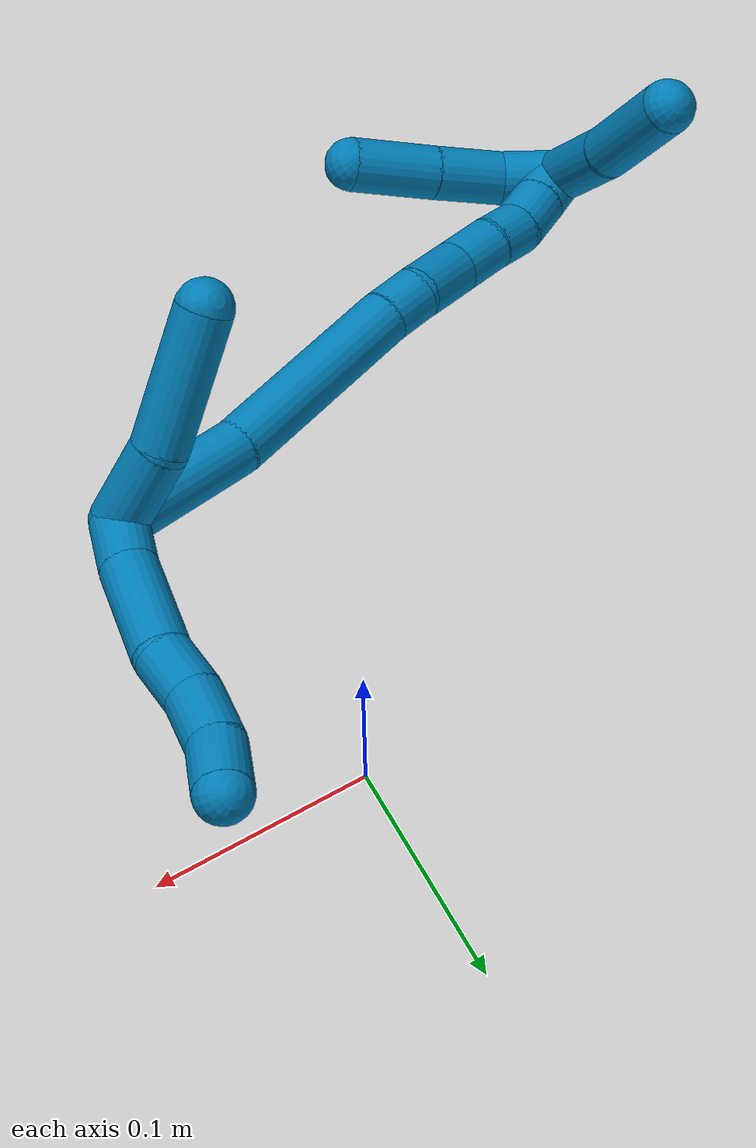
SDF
<sdf version="1.7">
 <world name="default">
  <model name="9">
   <static>0</static>
   <link name="9">
    <collision name="collision-cylinder-e_1_2_8">
     <pose>0.010353 -0.002466 -0.00426 2.61687 1.12699 2.33778</pose>
     <geometry><cylinder><radius>0.0125</radius><length>0.022927</length></cylinder></geometry>
     <surface>
      <friction><ode><mu>1.16</mu><mu2>1.16</mu2><slip1>0</slip1><slip2>0</slip2></ode></friction>
      <contact><ode><kp>1e+06</kp><kd>1</kd><max_vel>0</max_vel><min_depth>0.001</min_depth></ode></contact>
     </surface>
    </collision>
    <visual name="visual-cylinder-e_1_2_8">
     <pose>0.010353 -0.002466 -0.00426 2.61687 1.12699 2.33778</pose>
     <geometry><cylinder><radius>0.0125</radius><length>0.022927</length></cylinder></geometry>
     <material><ambient>0 0.490196 0.709804 1</ambient></material>
    </visual>
    <collision name="collision-cylinder-e_2_8_9">
     <pose>0.040021 -0.009905 -0.022417 2.7979 0.918308 2.46637</pose>
     <geometry><cylinder><radius>0.0125</radius><length>0.048618</length></cylinder></geometry>
     <surface>
      <friction><ode><mu>1.16</mu><mu2>1.16</mu2><slip1>0</slip1><slip2>0</slip2></ode></friction>
      <contact><ode><kp>1e+06</kp><kd>1</kd><max_vel>0</max_vel><min_depth>0.001</min_depth></ode></contact>
     </surface>
    </collision>
    <visual name="visual-cylinder-e_2_8_9">
     <pose>0.040021 -0.009905 -0.022417 2.7979 0.918308 2.46637</pose>
     <geometry><cylinder><radius>0.0125</radius><length>0.048618</length></cylinder></geometry>
     <material><ambient>0 0.490196 0.709804 1</ambient></material>
    </visual>
    <collision name="collision-cylinder-e_3_9_10">
     <pose>0.067512 -0.020232 -0.043096 2.4735 0.757689 1.70752</pose>
     <geometry><cylinder><radius>0.0125</radius><length>0.023791</length></cylinder></geometry>
     <surface>
      <friction><ode><mu>1.16</mu><mu2>1.16</mu2><slip1>0</slip1><slip2>0</slip2></ode></friction>
      <contact><ode><kp>1e+06</kp><kd>1</kd><max_vel>0</max_vel><min_depth>0.001</min_depth></ode></contact>
     </surface>
    </collision>
    <visual name="visual-cylinder-e_3_9_10">
     <pose>0.067512 -0.020232 -0.043096 2.4735 0.757689 1.70752</pose>
     <geometry><cylinder><radius>0.0125</radius><length>0.023791</length></cylinder></geometry>
     <material><ambient>0 0.490196 0.709804 1</ambient></material>
    </visual>
    <collision name="collision-cylinder-e_4_10_11">
     <pose>0.086157 -0.028176 -0.059218 2.87096 0.824004 2.53757</pose>
     <geometry><cylinder><radius>0.0125</radius><length>0.028534</length></cylinder></geometry>
     <surface>
      <friction><ode><mu>1.16</mu><mu2>1.16</mu2><slip1>0</slip1><slip2>0</slip2></ode></friction>
      <contact><ode><kp>1e+06</kp><kd>1</kd><max_vel>0</max_vel><min_depth>0.001</min_depth></ode></contact>
     </surface>
    </collision>
    <visual name="visual-cylinder-e_4_10_11">
     <pose>0.086157 -0.028176 -0.059218 2.87096 0.824004 2.53757</pose>
     <geometry><cylinder><radius>0.0125</radius><length>0.028534</length></cylinder></geometry>
     <material><ambient>0 0.490196 0.709804 1</ambient></material>
    </visual>
    <collision name="collision-cylinder-e_5_11_6">
     <pose>0.106905 -0.030291 -0.076608 -3.08255 0.905457 -3.02032</pose>
     <geometry><cylinder><radius>0.0125</radius><length>0.026131</length></cylinder></geometry>
     <surface>
      <friction><ode><mu>1.16</mu><mu2>1.16</mu2><slip1>0</slip1><slip2>0</slip2></ode></friction>
      <contact><ode><kp>1e+06</kp><kd>1</kd><max_vel>0</max_vel><min_depth>0.001</min_depth></ode></contact>
     </surface>
    </collision>
    <visual name="visual-cylinder-e_5_11_6">
     <pose>0.106905 -0.030291 -0.076608 -3.08255 0.905457 -3.02032</pose>
     <geometry><cylinder><radius>0.0125</radius><length>0.026131</length></cylinder></geometry>
     <material><ambient>0 0.490196 0.709804 1</ambient></material>
    </visual>
    <collision name="collision-cylinder-e_1_2_12">
     <pose>-0.012319 -0.000629 -0.014567 3.09841 -0.701495 -3.02368</pose>
     <geometry><cylinder><radius>0.0125</radius><length>0.038176</length></cylinder></geometry>
     <surface>
      <friction><ode><mu>1.16</mu><mu2>1.16</mu2><slip1>0</slip1><slip2>0</slip2></ode></friction>
      <contact><ode><kp>1e+06</kp><kd>1</kd><max_vel>0</max_vel><min_depth>0.001</min_depth></ode></contact>
     </surface>
    </collision>
    <visual name="visual-cylinder-e_1_2_12">
     <pose>-0.012319 -0.000629 -0.014567 3.09841 -0.701495 -3.02368</pose>
     <geometry><cylinder><radius>0.0125</radius><length>0.038176</length></cylinder></geometry>
     <material><ambient>0 0.490196 0.709804 1</ambient></material>
    </visual>
    <collision name="collision-cylinder-e_2_12_5">
     <pose>-0.049426 0.001418 -0.047407 -2.99611 -0.930516 2.85329</pose>
     <geometry><cylinder><radius>0.0125</radius><length>0.061824</length></cylinder></geometry>
     <surface>
      <friction><ode><mu>1.16</mu><mu2>1.16</mu2><slip1>0</slip1><slip2>0</slip2></ode></friction>
      <contact><ode><kp>1e+06</kp><kd>1</kd><max_vel>0</max_vel><min_depth>0.001</min_depth></ode></contact>
     </surface>
    </collision>
    <visual name="visual-cylinder-e_2_12_5">
     <pose>-0.049426 0.001418 -0.047407 -2.99611 -0.930516 2.85329</pose>
     <geometry><cylinder><radius>0.0125</radius><length>0.061824</length></cylinder></geometry>
     <material><ambient>0 0.490196 0.709804 1</ambient></material>
    </visual>
    <collision name="collision-cylinder-e_1_2_13">
     <pose>-0.022917 -0.02332 0.000805 1.5363 -0.77638 -0.752498</pose>
     <geometry><cylinder><radius>0.0125</radius><length>0.065411</length></cylinder></geometry>
     <surface>
      <friction><ode><mu>1.16</mu><mu2>1.16</mu2><slip1>0</slip1><slip2>0</slip2></ode></friction>
      <contact><ode><kp>1e+06</kp><kd>1</kd><max_vel>0</max_vel><min_depth>0.001</min_depth></ode></contact>
     </surface>
    </collision>
    <visual name="visual-cylinder-e_1_2_13">
     <pose>-0.022917 -0.02332 0.000805 1.5363 -0.77638 -0.752498</pose>
     <geometry><cylinder><radius>0.0125</radius><length>0.065411</length></cylinder></geometry>
     <material><ambient>0 0.490196 0.709804 1</ambient></material>
    </visual>
    <collision name="collision-cylinder-e_2_13_14">
     <pose>-0.084563 -0.075848 0.002163 1.55184 -0.924563 -0.909514</pose>
     <geometry><cylinder><radius>0.0125</radius><length>0.097024</length></cylinder></geometry>
     <surface>
      <friction><ode><mu>1.16</mu><mu2>1.16</mu2><slip1>0</slip1><slip2>0</slip2></ode></friction>
      <contact><ode><kp>1e+06</kp><kd>1</kd><max_vel>0</max_vel><min_depth>0.001</min_depth></ode></contact>
     </surface>
    </collision>
    <visual name="visual-cylinder-e_2_13_14">
     <pose>-0.084563 -0.075848 0.002163 1.55184 -0.924563 -0.909514</pose>
     <geometry><cylinder><radius>0.0125</radius><length>0.097024</length></cylinder></geometry>
     <material><ambient>0 0.490196 0.709804 1</ambient></material>
    </visual>
    <collision name="collision-cylinder-e_3_14_15">
     <pose>-0.131111 -0.111937 0.002898 1.54449 -0.848834 -0.82926</pose>
     <geometry><cylinder><radius>0.0125</radius><length>0.020834</length></cylinder></geometry>
     <surface>
      <friction><ode><mu>1.16</mu><mu2>1.16</mu2><slip1>0</slip1><slip2>0</slip2></ode></friction>
      <contact><ode><kp>1e+06</kp><kd>1</kd><max_vel>0</max_vel><min_depth>0.001</min_depth></ode></contact>
     </surface>
    </collision>
    <visual name="visual-cylinder-e_3_14_15">
     <pose>-0.131111 -0.111937 0.002898 1.54449 -0.848834 -0.82926</pose>
     <geometry><cylinder><radius>0.0125</radius><length>0.020834</length></cylinder></geometry>
     <material><ambient>0 0.490196 0.709804 1</ambient></material>
    </visual>
    <collision name="collision-cylinder-e_4_15_16">
     <pose>-0.149697 -0.129195 0.007193 1.19338 -0.767452 -0.535347</pose>
     <geometry><cylinder><radius>0.0125</radius><length>0.031018</length></cylinder></geometry>
     <surface>
      <friction><ode><mu>1.16</mu><mu2>1.16</mu2><slip1>0</slip1><slip2>0</slip2></ode></friction>
      <contact><ode><kp>1e+06</kp><kd>1</kd><max_vel>0</max_vel><min_depth>0.001</min_depth></ode></contact>
     </surface>
    </collision>
    <visual name="visual-cylinder-e_4_15_16">
     <pose>-0.149697 -0.129195 0.007193 1.19338 -0.767452 -0.535347</pose>
     <geometry><cylinder><radius>0.0125</radius><length>0.031018</length></cylinder></geometry>
     <material><ambient>0 0.490196 0.709804 1</ambient></material>
    </visual>
    <collision name="collision-cylinder-e_5_16_17">
     <pose>-0.169338 -0.147912 0.012081 1.47812 -0.814155 -0.748823</pose>
     <geometry><cylinder><radius>0.0125</radius><length>0.024404</length></cylinder></geometry>
     <surface>
      <friction><ode><mu>1.16</mu><mu2>1.16</mu2><slip1>0</slip1><slip2>0</slip2></ode></friction>
      <contact><ode><kp>1e+06</kp><kd>1</kd><max_vel>0</max_vel><min_depth>0.001</min_depth></ode></contact>
     </surface>
    </collision>
    <visual name="visual-cylinder-e_5_16_17">
     <pose>-0.169338 -0.147912 0.012081 1.47812 -0.814155 -0.748823</pose>
     <geometry><cylinder><radius>0.0125</radius><length>0.024404</length></cylinder></geometry>
     <material><ambient>0 0.490196 0.709804 1</ambient></material>
    </visual>
    <collision name="collision-cylinder-e_6_17_18">
     <pose>-0.185056 -0.16348 0.014488 1.34881 -0.745857 -0.606267</pose>
     <geometry><cylinder><radius>0.0125</radius><length>0.020175</length></cylinder></geometry>
     <surface>
      <friction><ode><mu>1.16</mu><mu2>1.16</mu2><slip1>0</slip1><slip2>0</slip2></ode></friction>
      <contact><ode><kp>1e+06</kp><kd>1</kd><max_vel>0</max_vel><min_depth>0.001</min_depth></ode></contact>
     </surface>
    </collision>
    <visual name="visual-cylinder-e_6_17_18">
     <pose>-0.185056 -0.16348 0.014488 1.34881 -0.745857 -0.606267</pose>
     <geometry><cylinder><radius>0.0125</radius><length>0.020175</length></cylinder></geometry>
     <material><ambient>0 0.490196 0.709804 1</ambient></material>
    </visual>
    <collision name="collision-cylinder-e_7_18_19">
     <pose>-0.200864 -0.176017 0.017685 1.28392 -1.01753 -0.790087</pose>
     <geometry><cylinder><radius>0.0125</radius><length>0.021067</length></cylinder></geometry>
     <surface>
      <friction><ode><mu>1.16</mu><mu2>1.16</mu2><slip1>0</slip1><slip2>0</slip2></ode></friction>
      <contact><ode><kp>1e+06</kp><kd>1</kd><max_vel>0</max_vel><min_depth>0.001</min_depth></ode></contact>
     </surface>
    </collision>
    <visual name="visual-cylinder-e_7_18_19">
     <pose>-0.200864 -0.176017 0.017685 1.28392 -1.01753 -0.790087</pose>
     <geometry><cylinder><radius>0.0125</radius><length>0.021067</length></cylinder></geometry>
     <material><ambient>0 0.490196 0.709804 1</ambient></material>
    </visual>
    <collision name="collision-cylinder-e_8_19_1">
     <pose>-0.218418 -0.186235 0.020906 1.24578 -1.02818 -0.770724</pose>
     <geometry><cylinder><radius>0.0125</radius><length>0.020066</length></cylinder></geometry>
     <surface>
      <friction><ode><mu>1.16</mu><mu2>1.16</mu2><slip1>0</slip1><slip2>0</slip2></ode></friction>
      <contact><ode><kp>1e+06</kp><kd>1</kd><max_vel>0</max_vel><min_depth>0.001</min_depth></ode></contact>
     </surface>
    </collision>
    <visual name="visual-cylinder-e_8_19_1">
     <pose>-0.218418 -0.186235 0.020906 1.24578 -1.02818 -0.770724</pose>
     <geometry><cylinder><radius>0.0125</radius><length>0.020066</length></cylinder></geometry>
     <material><ambient>0 0.490196 0.709804 1</ambient></material>
    </visual>
    <collision name="collision-cylinder-e_1_1_20">
     <pose>-0.225073 -0.190409 -0.001445 -3.11097 0.080466 -2.41453</pose>
     <geometry><cylinder><radius>0.0125</radius><length>0.048189</length></cylinder></geometry>
     <surface>
      <friction><ode><mu>1.16</mu><mu2>1.16</mu2><slip1>0</slip1><slip2>0</slip2></ode></friction>
      <contact><ode><kp>1e+06</kp><kd>1</kd><max_vel>0</max_vel><min_depth>0.001</min_depth></ode></contact>
     </surface>
    </collision>
    <visual name="visual-cylinder-e_1_1_20">
     <pose>-0.225073 -0.190409 -0.001445 -3.11097 0.080466 -2.41453</pose>
     <geometry><cylinder><radius>0.0125</radius><length>0.048189</length></cylinder></geometry>
     <material><ambient>0 0.490196 0.709804 1</ambient></material>
    </visual>
    <collision name="collision-cylinder-e_2_20_4">
     <pose>-0.224652 -0.188645 -0.051291 -3.1018 -0.058531 1.94748</pose>
     <geometry><cylinder><radius>0.0125</radius><length>0.051811</length></cylinder></geometry>
     <surface>
      <friction><ode><mu>1.16</mu><mu2>1.16</mu2><slip1>0</slip1><slip2>0</slip2></ode></friction>
      <contact><ode><kp>1e+06</kp><kd>1</kd><max_vel>0</max_vel><min_depth>0.001</min_depth></ode></contact>
     </surface>
    </collision>
    <visual name="visual-cylinder-e_2_20_4">
     <pose>-0.224652 -0.188645 -0.051291 -3.1018 -0.058531 1.94748</pose>
     <geometry><cylinder><radius>0.0125</radius><length>0.051811</length></cylinder></geometry>
     <material><ambient>0 0.490196 0.709804 1</ambient></material>
    </visual>
    <collision name="collision-cylinder-e_1_1_21">
     <pose>-0.22481 -0.179611 0.028863 -1.07068 0.165881 -0.098533</pose>
     <geometry><cylinder><radius>0.0125</radius><length>0.026653</length></cylinder></geometry>
     <surface>
      <friction><ode><mu>1.16</mu><mu2>1.16</mu2><slip1>0</slip1><slip2>0</slip2></ode></friction>
      <contact><ode><kp>1e+06</kp><kd>1</kd><max_vel>0</max_vel><min_depth>0.001</min_depth></ode></contact>
     </surface>
    </collision>
    <visual name="visual-cylinder-e_1_1_21">
     <pose>-0.22481 -0.179611 0.028863 -1.07068 0.165881 -0.098533</pose>
     <geometry><cylinder><radius>0.0125</radius><length>0.026653</length></cylinder></geometry>
     <material><ambient>0 0.490196 0.709804 1</ambient></material>
    </visual>
    <collision name="collision-cylinder-e_2_21_22">
     <pose>-0.219328 -0.151952 0.037583 -1.42196 0.198597 -0.171183</pose>
     <geometry><cylinder><radius>0.0125</radius><length>0.033264</length></cylinder></geometry>
     <surface>
      <friction><ode><mu>1.16</mu><mu2>1.16</mu2><slip1>0</slip1><slip2>0</slip2></ode></friction>
      <contact><ode><kp>1e+06</kp><kd>1</kd><max_vel>0</max_vel><min_depth>0.001</min_depth></ode></contact>
     </surface>
    </collision>
    <visual name="visual-cylinder-e_2_21_22">
     <pose>-0.219328 -0.151952 0.037583 -1.42196 0.198597 -0.171183</pose>
     <geometry><cylinder><radius>0.0125</radius><length>0.033264</length></cylinder></geometry>
     <material><ambient>0 0.490196 0.709804 1</ambient></material>
    </visual>
    <collision name="collision-cylinder-e_3_22_3">
     <pose>-0.21257 -0.116354 0.04322 -1.407 0.174332 -0.14799</pose>
     <geometry><cylinder><radius>0.0125</radius><length>0.040083</length></cylinder></geometry>
     <surface>
      <friction><ode><mu>1.16</mu><mu2>1.16</mu2><slip1>0</slip1><slip2>0</slip2></ode></friction>
      <contact><ode><kp>1e+06</kp><kd>1</kd><max_vel>0</max_vel><min_depth>0.001</min_depth></ode></contact>
     </surface>
    </collision>
    <visual name="visual-cylinder-e_3_22_3">
     <pose>-0.21257 -0.116354 0.04322 -1.407 0.174332 -0.14799</pose>
     <geometry><cylinder><radius>0.0125</radius><length>0.040083</length></cylinder></geometry>
     <material><ambient>0 0.490196 0.709804 1</ambient></material>
    </visual>
    <collision name="collision-sphere-3">
     <pose>-0.209094 -0.09688 0.046438 0 -0 0</pose>
     <geometry><sphere><radius>0.0125</radius></sphere></geometry>
     <surface>
      <friction><ode><mu>1.16</mu><mu2>1.16</mu2><slip1>0</slip1><slip2>0</slip2></ode></friction>
      <contact><ode><kp>1e+06</kp><kd>1</kd><max_vel>0</max_vel><min_depth>0.001</min_depth></ode></contact>
     </surface>
    </collision>
    <visual name="visual-sphere-3">
     <pose>-0.209094 -0.09688 0.046438 0 -0 0</pose>
     <geometry><sphere><radius>0.0125</radius></sphere></geometry>
     <material><ambient>0 0.490196 0.709804 1</ambient></material>
    </visual>
    <collision name="collision-sphere-22">
     <pose>-0.216046 -0.135827 0.040001 0 -0 0</pose>
     <geometry><sphere><radius>0.0125</radius></sphere></geometry>
     <surface>
      <friction><ode><mu>1.16</mu><mu2>1.16</mu2><slip1>0</slip1><slip2>0</slip2></ode></friction>
      <contact><ode><kp>1e+06</kp><kd>1</kd><max_vel>0</max_vel><min_depth>0.001</min_depth></ode></contact>
     </surface>
    </collision>
    <visual name="visual-sphere-22">
     <pose>-0.216046 -0.135827 0.040001 0 -0 0</pose>
     <geometry><sphere><radius>0.0125</radius></sphere></geometry>
     <material><ambient>0 0.490196 0.709804 1</ambient></material>
    </visual>
    <collision name="collision-sphere-21">
     <pose>-0.222609 -0.168077 0.035165 0 -0 0</pose>
     <geometry><sphere><radius>0.0125</radius></sphere></geometry>
     <surface>
      <friction><ode><mu>1.16</mu><mu2>1.16</mu2><slip1>0</slip1><slip2>0</slip2></ode></friction>
      <contact><ode><kp>1e+06</kp><kd>1</kd><max_vel>0</max_vel><min_depth>0.001</min_depth></ode></contact>
     </surface>
    </collision>
    <visual name="visual-sphere-21">
     <pose>-0.222609 -0.168077 0.035165 0 -0 0</pose>
     <geometry><sphere><radius>0.0125</radius></sphere></geometry>
     <material><ambient>0 0.490196 0.709804 1</ambient></material>
    </visual>
    <collision name="collision-sphere-4">
     <pose>-0.226168 -0.187616 -0.077132 0 -0 0</pose>
     <geometry><sphere><radius>0.0125</radius></sphere></geometry>
     <surface>
      <friction><ode><mu>1.16</mu><mu2>1.16</mu2><slip1>0</slip1><slip2>0</slip2></ode></friction>
      <contact><ode><kp>1e+06</kp><kd>1</kd><max_vel>0</max_vel><min_depth>0.001</min_depth></ode></contact>
     </surface>
    </collision>
    <visual name="visual-sphere-4">
     <pose>-0.226168 -0.187616 -0.077132 0 -0 0</pose>
     <geometry><sphere><radius>0.0125</radius></sphere></geometry>
     <material><ambient>0 0.490196 0.709804 1</ambient></material>
    </visual>
    <collision name="collision-sphere-20">
     <pose>-0.223137 -0.189674 -0.02545 0 -0 0</pose>
     <geometry><sphere><radius>0.0125</radius></sphere></geometry>
     <surface>
      <friction><ode><mu>1.16</mu><mu2>1.16</mu2><slip1>0</slip1><slip2>0</slip2></ode></friction>
      <contact><ode><kp>1e+06</kp><kd>1</kd><max_vel>0</max_vel><min_depth>0.001</min_depth></ode></contact>
     </surface>
    </collision>
    <visual name="visual-sphere-20">
     <pose>-0.223137 -0.189674 -0.02545 0 -0 0</pose>
     <geometry><sphere><radius>0.0125</radius></sphere></geometry>
     <material><ambient>0 0.490196 0.709804 1</ambient></material>
    </visual>
    <collision name="collision-sphere-6">
     <pose>0.117184 -0.029815 -0.08466 0 -0 0</pose>
     <geometry><sphere><radius>0.0125</radius></sphere></geometry>
     <surface>
      <friction><ode><mu>1.16</mu><mu2>1.16</mu2><slip1>0</slip1><slip2>0</slip2></ode></friction>
      <contact><ode><kp>1e+06</kp><kd>1</kd><max_vel>0</max_vel><min_depth>0.001</min_depth></ode></contact>
     </surface>
    </collision>
    <visual name="visual-sphere-6">
     <pose>0.117184 -0.029815 -0.08466 0 -0 0</pose>
     <geometry><sphere><radius>0.0125</radius></sphere></geometry>
     <material><ambient>0 0.490196 0.709804 1</ambient></material>
    </visual>
    <collision name="collision-sphere-11">
     <pose>0.096627 -0.030767 -0.068557 0 -0 0</pose>
     <geometry><sphere><radius>0.0125</radius></sphere></geometry>
     <surface>
      <friction><ode><mu>1.16</mu><mu2>1.16</mu2><slip1>0</slip1><slip2>0</slip2></ode></friction>
      <contact><ode><kp>1e+06</kp><kd>1</kd><max_vel>0</max_vel><min_depth>0.001</min_depth></ode></contact>
     </surface>
    </collision>
    <visual name="visual-sphere-11">
     <pose>0.096627 -0.030767 -0.068557 0 -0 0</pose>
     <geometry><sphere><radius>0.0125</radius></sphere></geometry>
     <material><ambient>0 0.490196 0.709804 1</ambient></material>
    </visual>
    <collision name="collision-sphere-10">
     <pose>0.075687 -0.025585 -0.04988 0 -0 0</pose>
     <geometry><sphere><radius>0.0125</radius></sphere></geometry>
     <surface>
      <friction><ode><mu>1.16</mu><mu2>1.16</mu2><slip1>0</slip1><slip2>0</slip2></ode></friction>
      <contact><ode><kp>1e+06</kp><kd>1</kd><max_vel>0</max_vel><min_depth>0.001</min_depth></ode></contact>
     </surface>
    </collision>
    <visual name="visual-sphere-10">
     <pose>0.075687 -0.025585 -0.04988 0 -0 0</pose>
     <geometry><sphere><radius>0.0125</radius></sphere></geometry>
     <material><ambient>0 0.490196 0.709804 1</ambient></material>
    </visual>
    <collision name="collision-sphere-9">
     <pose>0.059337 -0.014879 -0.036313 0 -0 0</pose>
     <geometry><sphere><radius>0.0125</radius></sphere></geometry>
     <surface>
      <friction><ode><mu>1.16</mu><mu2>1.16</mu2><slip1>0</slip1><slip2>0</slip2></ode></friction>
      <contact><ode><kp>1e+06</kp><kd>1</kd><max_vel>0</max_vel><min_depth>0.001</min_depth></ode></contact>
     </surface>
    </collision>
    <visual name="visual-sphere-9">
     <pose>0.059337 -0.014879 -0.036313 0 -0 0</pose>
     <geometry><sphere><radius>0.0125</radius></sphere></geometry>
     <material><ambient>0 0.490196 0.709804 1</ambient></material>
    </visual>
    <collision name="collision-sphere-2">
     <geometry><sphere><radius>0.0125</radius></sphere></geometry>
     <surface>
      <friction><ode><mu>1.16</mu><mu2>1.16</mu2><slip1>0</slip1><slip2>0</slip2></ode></friction>
      <contact><ode><kp>1e+06</kp><kd>1</kd><max_vel>0</max_vel><min_depth>0.001</min_depth></ode></contact>
     </surface>
    </collision>
    <visual name="visual-sphere-2">
     <geometry><sphere><radius>0.0125</radius></sphere></geometry>
     <material><ambient>0 0.490196 0.709804 1</ambient></material>
    </visual>
    <collision name="collision-sphere-19">
     <pose>-0.209826 -0.181326 0.019252 0 -0 0</pose>
     <geometry><sphere><radius>0.0125</radius></sphere></geometry>
     <surface>
      <friction><ode><mu>1.16</mu><mu2>1.16</mu2><slip1>0</slip1><slip2>0</slip2></ode></friction>
      <contact><ode><kp>1e+06</kp><kd>1</kd><max_vel>0</max_vel><min_depth>0.001</min_depth></ode></contact>
     </surface>
    </collision>
    <visual name="visual-sphere-19">
     <pose>-0.209826 -0.181326 0.019252 0 -0 0</pose>
     <geometry><sphere><radius>0.0125</radius></sphere></geometry>
     <material><ambient>0 0.490196 0.709804 1</ambient></material>
    </visual>
    <collision name="collision-sphere-8">
     <pose>0.020706 -0.004932 -0.00852 0 -0 0</pose>
     <geometry><sphere><radius>0.0125</radius></sphere></geometry>
     <surface>
      <friction><ode><mu>1.16</mu><mu2>1.16</mu2><slip1>0</slip1><slip2>0</slip2></ode></friction>
      <contact><ode><kp>1e+06</kp><kd>1</kd><max_vel>0</max_vel><min_depth>0.001</min_depth></ode></contact>
     </surface>
    </collision>
    <visual name="visual-sphere-8">
     <pose>0.020706 -0.004932 -0.00852 0 -0 0</pose>
     <geometry><sphere><radius>0.0125</radius></sphere></geometry>
     <material><ambient>0 0.490196 0.709804 1</ambient></material>
    </visual>
    <collision name="collision-sphere-12">
     <pose>-0.024637 -0.001259 -0.029134 0 -0 0</pose>
     <geometry><sphere><radius>0.0125</radius></sphere></geometry>
     <surface>
      <friction><ode><mu>1.16</mu><mu2>1.16</mu2><slip1>0</slip1><slip2>0</slip2></ode></friction>
      <contact><ode><kp>1e+06</kp><kd>1</kd><max_vel>0</max_vel><min_depth>0.001</min_depth></ode></contact>
     </surface>
    </collision>
    <visual name="visual-sphere-12">
     <pose>-0.024637 -0.001259 -0.029134 0 -0 0</pose>
     <geometry><sphere><radius>0.0125</radius></sphere></geometry>
     <material><ambient>0 0.490196 0.709804 1</ambient></material>
    </visual>
    <collision name="collision-sphere-5">
     <pose>-0.074216 0.004096 -0.065679 0 -0 0</pose>
     <geometry><sphere><radius>0.0125</radius></sphere></geometry>
     <surface>
      <friction><ode><mu>1.16</mu><mu2>1.16</mu2><slip1>0</slip1><slip2>0</slip2></ode></friction>
      <contact><ode><kp>1e+06</kp><kd>1</kd><max_vel>0</max_vel><min_depth>0.001</min_depth></ode></contact>
     </surface>
    </collision>
    <visual name="visual-sphere-5">
     <pose>-0.074216 0.004096 -0.065679 0 -0 0</pose>
     <geometry><sphere><radius>0.0125</radius></sphere></geometry>
     <material><ambient>0 0.490196 0.709804 1</ambient></material>
    </visual>
    <collision name="collision-sphere-13">
     <pose>-0.045833 -0.04664 0.00161 0 -0 0</pose>
     <geometry><sphere><radius>0.0125</radius></sphere></geometry>
     <surface>
      <friction><ode><mu>1.16</mu><mu2>1.16</mu2><slip1>0</slip1><slip2>0</slip2></ode></friction>
      <contact><ode><kp>1e+06</kp><kd>1</kd><max_vel>0</max_vel><min_depth>0.001</min_depth></ode></contact>
     </surface>
    </collision>
    <visual name="visual-sphere-13">
     <pose>-0.045833 -0.04664 0.00161 0 -0 0</pose>
     <geometry><sphere><radius>0.0125</radius></sphere></geometry>
     <material><ambient>0 0.490196 0.709804 1</ambient></material>
    </visual>
    <collision name="collision-sphere-14">
     <pose>-0.123293 -0.105055 0.002717 0 -0 0</pose>
     <geometry><sphere><radius>0.0125</radius></sphere></geometry>
     <surface>
      <friction><ode><mu>1.16</mu><mu2>1.16</mu2><slip1>0</slip1><slip2>0</slip2></ode></friction>
      <contact><ode><kp>1e+06</kp><kd>1</kd><max_vel>0</max_vel><min_depth>0.001</min_depth></ode></contact>
     </surface>
    </collision>
    <visual name="visual-sphere-14">
     <pose>-0.123293 -0.105055 0.002717 0 -0 0</pose>
     <geometry><sphere><radius>0.0125</radius></sphere></geometry>
     <material><ambient>0 0.490196 0.709804 1</ambient></material>
    </visual>
    <collision name="collision-sphere-15">
     <pose>-0.138929 -0.118819 0.003079 0 -0 0</pose>
     <geometry><sphere><radius>0.0125</radius></sphere></geometry>
     <surface>
      <friction><ode><mu>1.16</mu><mu2>1.16</mu2><slip1>0</slip1><slip2>0</slip2></ode></friction>
      <contact><ode><kp>1e+06</kp><kd>1</kd><max_vel>0</max_vel><min_depth>0.001</min_depth></ode></contact>
     </surface>
    </collision>
    <visual name="visual-sphere-15">
     <pose>-0.138929 -0.118819 0.003079 0 -0 0</pose>
     <geometry><sphere><radius>0.0125</radius></sphere></geometry>
     <material><ambient>0 0.490196 0.709804 1</ambient></material>
    </visual>
    <collision name="collision-sphere-16">
     <pose>-0.160465 -0.139571 0.011306 0 -0 0</pose>
     <geometry><sphere><radius>0.0125</radius></sphere></geometry>
     <surface>
      <friction><ode><mu>1.16</mu><mu2>1.16</mu2><slip1>0</slip1><slip2>0</slip2></ode></friction>
      <contact><ode><kp>1e+06</kp><kd>1</kd><max_vel>0</max_vel><min_depth>0.001</min_depth></ode></contact>
     </surface>
    </collision>
    <visual name="visual-sphere-16">
     <pose>-0.160465 -0.139571 0.011306 0 -0 0</pose>
     <geometry><sphere><radius>0.0125</radius></sphere></geometry>
     <material><ambient>0 0.490196 0.709804 1</ambient></material>
    </visual>
    <collision name="collision-sphere-17">
     <pose>-0.178211 -0.156252 0.012856 0 -0 0</pose>
     <geometry><sphere><radius>0.0125</radius></sphere></geometry>
     <surface>
      <friction><ode><mu>1.16</mu><mu2>1.16</mu2><slip1>0</slip1><slip2>0</slip2></ode></friction>
      <contact><ode><kp>1e+06</kp><kd>1</kd><max_vel>0</max_vel><min_depth>0.001</min_depth></ode></contact>
     </surface>
    </collision>
    <visual name="visual-sphere-17">
     <pose>-0.178211 -0.156252 0.012856 0 -0 0</pose>
     <geometry><sphere><radius>0.0125</radius></sphere></geometry>
     <material><ambient>0 0.490196 0.709804 1</ambient></material>
    </visual>
    <collision name="collision-sphere-18">
     <pose>-0.191902 -0.170708 0.016119 0 -0 0</pose>
     <geometry><sphere><radius>0.0125</radius></sphere></geometry>
     <surface>
      <friction><ode><mu>1.16</mu><mu2>1.16</mu2><slip1>0</slip1><slip2>0</slip2></ode></friction>
      <contact><ode><kp>1e+06</kp><kd>1</kd><max_vel>0</max_vel><min_depth>0.001</min_depth></ode></contact>
     </surface>
    </collision>
    <visual name="visual-sphere-18">
     <pose>-0.191902 -0.170708 0.016119 0 -0 0</pose>
     <geometry><sphere><radius>0.0125</radius></sphere></geometry>
     <material><ambient>0 0.490196 0.709804 1</ambient></material>
    </visual>
    <collision name="collision-sphere-1">
     <pose>-0.22701 -0.191145 0.02256 0 -0 0</pose>
     <geometry><sphere><radius>0.0125</radius></sphere></geometry>
     <surface>
      <friction><ode><mu>1.16</mu><mu2>1.16</mu2><slip1>0</slip1><slip2>0</slip2></ode></friction>
      <contact><ode><kp>1e+06</kp><kd>1</kd><max_vel>0</max_vel><min_depth>0.001</min_depth></ode></contact>
     </surface>
    </collision>
    <visual name="visual-sphere-1">
     <pose>-0.22701 -0.191145 0.02256 0 -0 0</pose>
     <geometry><sphere><radius>0.0125</radius></sphere></geometry>
     <material><ambient>0 0.490196 0.709804 1</ambient></material>
    </visual>
    <inertial>
     <pose>-0.09645 -0.087444 -0.008588 0 -0 0</pose>
     <mass>0.75</mass>
     <inertia><ixx>-3.2e-05</ixx><ixy>0</ixy><ixz>0</ixz><iyy>8.4e-05</iyy><iyz>0</iyz><izz>0.00014</izz></inertia>
    </inertial>
   </link>
   <pose>0.04889 -0.117374 0.085593 2.62422 0.174575 0.908258</pose>
  </model>
 </world>
</sdf>
